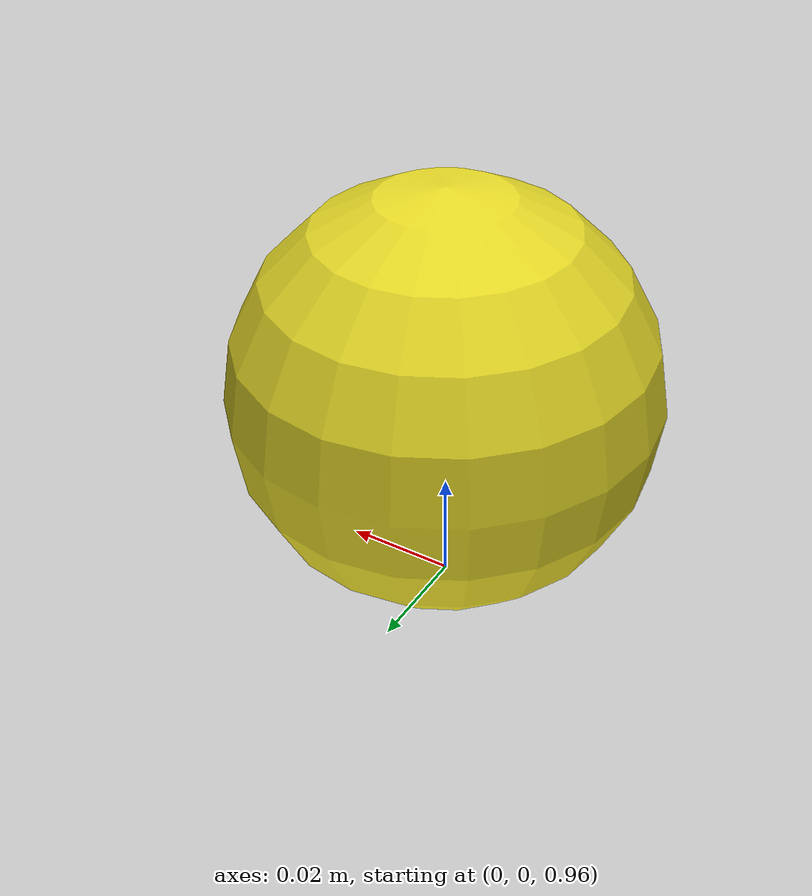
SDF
<?xml version='1.0'?>
<sdf version='1.6'>
  <model name='tennis_ball'>
    <link name='link'>
      <pose frame=''>0 0 1 0 -0 0</pose>
      <inertial>
        <mass>0.1467</mass>
        <inertia>
          <ixx>8.25187e-05</ixx>
          <ixy>0</ixy>
          <ixz>0</ixz>
          <iyy>8.25187e-05</iyy>
          <iyz>0</iyz>
          <izz>8.25187e-05</izz>
        </inertia>
      </inertial>
      <self_collide>0</self_collide>
      <kinematic>0</kinematic>
      <velocity_decay>
        <linear>0</linear>
        <angular>0.005</angular>
      </velocity_decay>
      <visual name='visual'>
        <geometry>
          <sphere>
            <radius>0.0375</radius>
          </sphere>
        </geometry>
        <material>
          <script>
            <uri>file://media/materials/scripts/gazebo.material</uri>
            <name>Gazebo/Yellow</name>
          </script>
          <ambient>1 0 0 1</ambient>
          <diffuse>1 0 0 1</diffuse>
          <specular>0.1 0.1 0.1 1</specular>
          <emissive>0 0 0 1</emissive>
        </material>
        <pose frame=''>0 0 0 0 -0 0</pose>
        <cast_shadows>1</cast_shadows>
        <transparency>0</transparency>
      </visual>
 <sensor name="gps" type="gps">
      	<pose>0 .252 -.041 0 0 0</pose>
	  	<update_rate>10.0</update_rate>
		<always_on>true</always_on>
		<gps>
		  <position_sensing>
		  	<horizontal>
			  <noise type="gaussian">
			    <mean>0</mean>
				<stddev>0</stddev>
			  </noise>
			</horizontal>
		  </position_sensing>
		</gps>
	  </sensor>
	  <sensor name="imu" type="imu">
      	<pose>0 .252 -.041 0 0 0</pose>
	  	<update_rate>10.0</update_rate>
		<always_on>true</always_on>
		<imu>
		</imu>
	  </sensor>
      <collision name='collision'>
        <laser_retro>0</laser_retro>
        <max_contacts>10</max_contacts>
        <pose frame=''>0 0 0 0 -0 0</pose>
        <geometry>
          <sphere>
            <radius>0.0375</radius>
          </sphere>
        </geometry>
        <surface>
          <friction>
            <ode>
              <mu>1</mu>
              <mu2>1</mu2>
              <fdir1>0 0 0</fdir1>
              <slip1>0</slip1>
              <slip2>0</slip2>
            </ode>
            <torsional>
              <coefficient>1</coefficient>
              <patch_radius>0</patch_radius>
              <surface_radius>0.01</surface_radius>
              <use_patch_radius>0</use_patch_radius>
              <ode>
                <slip>0</slip>
              </ode>
            </torsional>
          </friction>
          <bounce>
            <restitution_coefficient>0</restitution_coefficient>
            <threshold>1e+06</threshold>
          </bounce>
          <contact>
            <collide_without_contact>0</collide_without_contact>
            <collide_without_contact_bitmask>1</collide_without_contact_bitmask>
            <collide_bitmask>1</collide_bitmask>
            <ode>
              <soft_cfm>0</soft_cfm>
              <soft_erp>0.2</soft_erp>
              <kp>100000</kp>
              <kd>100</kd>
              <max_vel>100</max_vel>
              <min_depth>0.001</min_depth>
            </ode>
            <bullet>
              <split_impulse>1</split_impulse>
              <split_impulse_penetration_threshold>-0.01</split_impulse_penetration_threshold>
              <soft_cfm>0</soft_cfm>
              <soft_erp>0.2</soft_erp>
              <kp>100000</kp>
              <kd>100</kd>
            </bullet>
          </contact>
        </surface>
      </collision>
    </link>
    <static>1</static>
    <allow_auto_disable>1</allow_auto_disable>
	<plugin name="TennisBallPlugin" filename="libTennisBallPlugin.so"/>
  </model>
</sdf>
